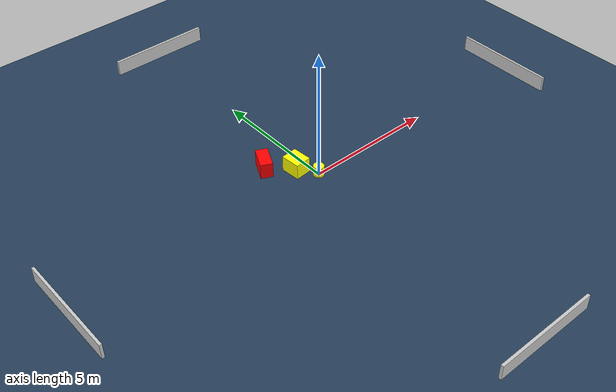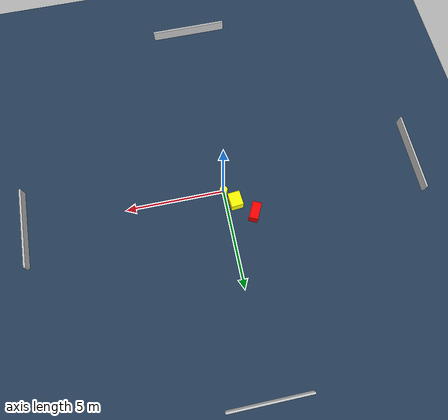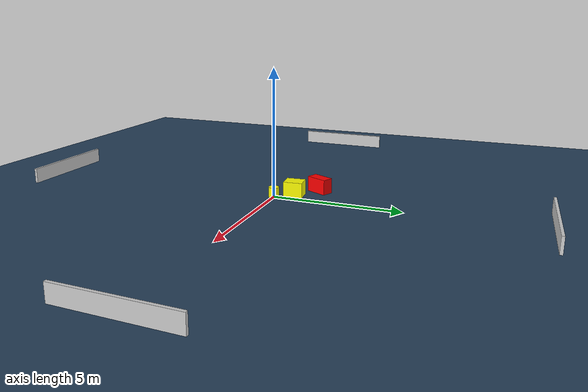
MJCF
<?xml version="1.0" ?>
<mujoco model="generated_environment">
  <option timestep="0.01" integrator="RK4" cone="elliptic"/>
  <default>
    <geom density="1"/>
  </default>
  <asset>
    <texture builtin="gradient" height="3072" name="skybox" rgb1="0.3 0.5 0.7" rgb2="0 0 0" type="skybox" width="512"/>
    <texture builtin="checker" height="300" name="groundplane" rgb1="0.2 0.3 0.4" rgb2="0.1 0.2 0.3" type="2d" width="300"/>
    <material name="groundplane" reflectance="0.2" texrepeat="5 5" texture="groundplane"/>
  </asset>
  <worldbody>
    <light dir="0 0 -1" directional="true" pos="0 0 1.5"/>
    <geom condim="3" friction="0.5 0.005 0.001" material="groundplane" name="floor" pos="0 0 0" size="0 0 0.05" type="plane"/>
    <body name="walls">
      <geom name="wall_1" condim="4" pos="-10.0 0.0 0.3" rgba="0.800000011920929 0.800000011920929 0.800000011920929 1.0" size="0.05 2.0 0.3" type="box"/>
      <geom name="wall_2" condim="4" pos="10.0 0.0 0.3" rgba="0.800000011920929 0.800000011920929 0.800000011920929 1.0" size="0.05 2.0 0.3" type="box"/>
      <geom name="wall_3" condim="4" pos="0.0 -10.0 0.3" rgba="0.800000011920929 0.800000011920929 0.800000011920929 1.0" size="2.0 0.05 0.3" type="box"/>
      <geom name="wall_4" condim="4" pos="0.0 10.0 0.3" rgba="0.800000011920929 0.800000011920929 0.800000011920929 1.0" size="2.0 0.05 0.3" type="box"/>
    </body>
    <body name="robot">
      <joint name="joint_x" type="slide" pos="0 0 0" axis="1 0 0"/>
      <joint name="joint_y" type="slide" pos="0 0 0" axis="0 1 0"/>
      <geom name="robot" type="cylinder" pos="0.0 0.0 0.2" size="0.2 0.2 0.0" mass="5.0" friction="1.0 0.005 0.0001" condim="4" rgba="1.0 1.0 0.0 1.0"/>
    </body>
    <body name="obstacle_1_movable">
      <geom name="obstacle_1_movable" condim="4" pos="-0.4651141614176003 0.6843426184321904 0.3" euler="0 0 184.71446882248958" friction="0.0 0.005 0.001" rgba="1.0 1.0 0.0 1.0" size="0.30917660207722597 0.36924338904107096 0.3" type="box" mass="0.1"/>
      <joint type="free"/>
    </body>
    <body name="obstacle_2_static">
      <geom name="obstacle_2_static" condim="4" pos="-1.2990830718911113 1.4568983995637492 0.3" euler="0 0 153.7651614411228" friction="0.0 0.005 0.001" rgba="1.0 0.0 0.0 1.0" size="0.22751942310803344 0.4358430250957058 0.3" type="box"/>
    </body>
  </worldbody>
  <actuator>
    <motor name="actuator_x" joint="joint_x" gear="1" ctrlrange="-1 1"/>
    <motor name="actuator_y" joint="joint_y" gear="1" ctrlrange="-1 1"/>
  </actuator>
</mujoco>
